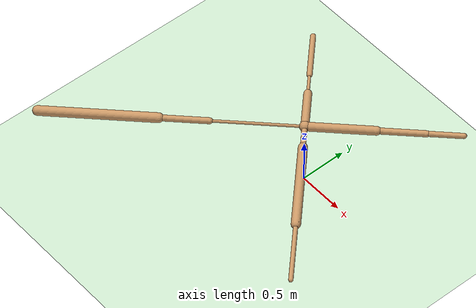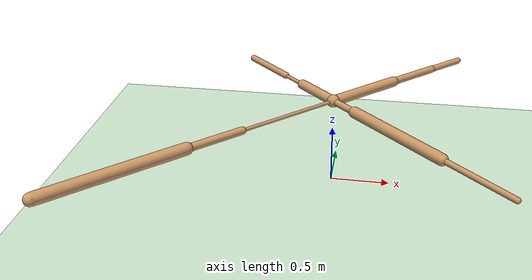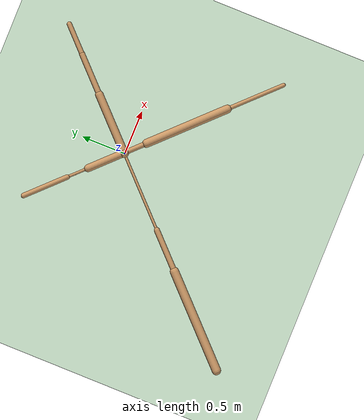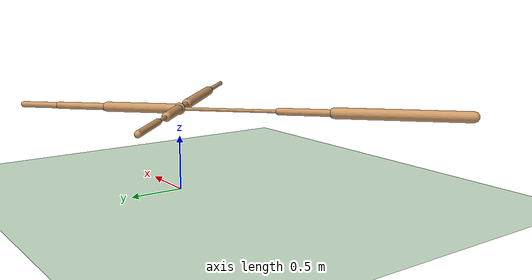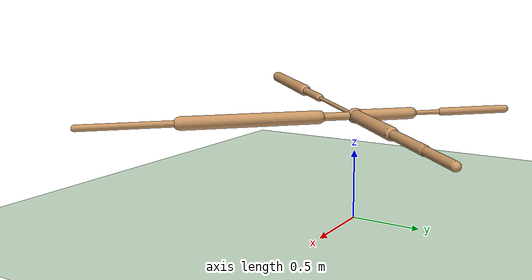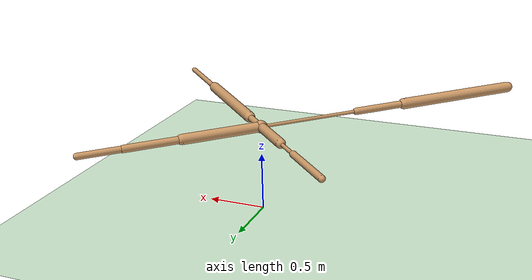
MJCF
<mujoco model="ant">
  <compiler angle="degree" coordinate="local" inertiafromgeom="true" />
  <option integrator="RK4" timestep="0.01" />
  <custom>
    <numeric data="0.0 0.0 0.55 1.0 0.0 0.0 0.0 0.0 1.0 0.0 -1.0 0.0 -1.0 0.0 1.0" name="init_qpos" />
  </custom>
  <default>
    <joint armature="1" damping="1" limited="true" />
    <geom conaffinity="0" condim="3" density="5.0" friction="1 0.5 0.5" margin="0.01" rgba="0.8 0.6 0.4 1" />
  </default>
  <asset>
    <texture builtin="gradient" height="100" rgb1="1 1 1" rgb2="0 0 0" type="skybox" width="100" />
    <texture builtin="flat" height="1278" mark="cross" markrgb="1 1 1" name="texgeom" random="0.01" rgb1="0.8 0.6 0.4" rgb2="0.8 0.6 0.4" type="cube" width="127" />
    <texture builtin="checker" height="100" name="texplane" rgb1="0 0 0" rgb2="0.8 0.8 0.8" type="2d" width="100" />
    <material name="MatPlane" reflectance="0.5" shininess="1" specular="1" texrepeat="60 60" texture="texplane" />
    <material name="geom" texture="texgeom" texuniform="true" />
  </asset>
  <worldbody>
    <light cutoff="100" diffuse="1 1 1" dir="-0 0 -1.3" directional="true" exponent="1" pos="0 0 1.3" specular=".1 .1 .1" />
    <geom conaffinity="1" condim="3" material="MatPlane" name="floor" pos="0 0 0" rgba="0.8 0.9 0.8 1" size="40 40 40" type="plane" />
    <body name="torso" pos="0 0 0.75">
      <camera name="track" mode="trackcom" pos="0 -11 5" xyaxes="1 0 0 0 0.5 1" />
      <geom name="torso_geom" pos="0 0 0" size="0.0537191703915596" type="sphere" />
      <joint armature="0" damping="0" limited="false" margin="0.01" name="root" pos="0 0 0" type="free" />
      <body name="front_left_leg" pos="0 0 0">
        <geom fromto="0 0 0 0.4819886386394501 0.4819886386394501 0" name="aux_1_geom" size="0.04423833638429642" type="capsule" />
        <body name="aux_1" pos="0.4819886386394501 0.4819886386394501 0">
          <joint axis="0 0 1" name="hip_1" pos="0.0 0.0 0.0" range="-30 30" type="hinge" />
          <geom fromto="0 0 0 0.3337860405445099 0.3337860405445099 0" name="left_leg_geom" size="0.03169228881597519" type="capsule" />
          <body name="left_leg_geom_aux" pos="0.3337860405445099 0.3337860405445099 0">
            <joint axis="-1 1 0" name="ankle_1" pos="0.0 0.0 0.0" range="30 70" type="hinge" />
            <geom fromto="0 0 0 0.24882763624191284 0.24882763624191284 0" name="left_ankle_geom" size="0.0273785050958395" type="capsule" />
          </body>
        </body>
      </body>
      <body name="front_right_leg" pos="0 0 0">
        <geom fromto="0 0 0 -0.29755309224128723 0.29755309224128723 0" name="aux_2_geom" size="0.04140832647681236" type="capsule" />
        <body name="aux_2" pos="-0.29755309224128723 0.29755309224128723 0">
          <joint axis="0 0 1" name="hip_2" pos="0.0 0.0 0.0" range="-30 30" type="hinge" />
          <geom fromto="0 0 0 -0.17156273126602173 0.17156273126602173 0" name="right_leg_geom" size="0.015666646882891655" type="capsule" />
          <body name="right_leg_geom_aux" pos="-0.17156273126602173 0.17156273126602173 0">
            <joint axis="1 1 0" name="ankle_2" pos="0.0 0.0 0.0" range="-70 -30" type="hinge" />
            <geom fromto="0 0 0 -0.3616850972175598 0.3616850972175598 0" name="right_ankle_geom" size="0.028036540374159813" type="capsule" />
          </body>
        </body>
      </body>
      <body name="back_leg" pos="0 0 0">
        <geom fromto="0 0 0 -0.6383985877037048 -0.6383985877037048 0" name="aux_3_geom" size="0.01466898899525404" type="capsule" />
        <body name="aux_3" pos="-0.6383985877037048 -0.6383985877037048 0">
          <joint axis="0 0 1" name="hip_3" pos="0.0 0.0 0.0" range="-30 30" type="hinge" />
          <geom fromto="0 0 0 -0.3428608179092407 -0.3428608179092407 0" name="back_leg_geom" size="0.03132690116763115" type="capsule" />
          <body name="back_leg_geom_aux" pos="-0.3428608179092407 -0.3428608179092407 0">
            <joint axis="-1 1 0" name="ankle_3" pos="0.0 0.0 0.0" range="-70 -30" type="hinge" />
            <geom fromto="0 0 0 -0.8184705376625061 -0.8184705376625061 0" name="third_ankle_geom" size="0.04920578747987747" type="capsule" />
          </body>
        </body>
      </body>
      <body name="right_back_leg" pos="0 0 0">
        <geom fromto="0 0 0 0.1868748515844345 -0.1868748515844345 0" name="aux_4_geom" size="0.02789677120745182" type="capsule" />
        <body name="aux_4" pos="0.1868748515844345 -0.1868748515844345 0">
          <joint axis="0 0 1" name="hip_4" pos="0.0 0.0 0.0" range="-30 30" type="hinge" />
          <geom fromto="0 0 0 0.6671394109725952 -0.6671394109725952 0" name="rightback_leg_geom" size="0.04669053107500076" type="capsule" />
          <body name="rightback_leg_geom_aux" pos="0.6671394109725952 -0.6671394109725952 0">
            <joint axis="1 1 0" name="ankle_4" pos="0.0 0.0 0.0" range="30 70" type="hinge" />
            <geom fromto="0 0 0 0.4644867181777954 -0.4644867181777954 0" name="fourth_ankle_geom" size="0.022664640098810196" type="capsule" />
          </body>
        </body>
      </body>
    </body>
  </worldbody>
  <actuator>
    <motor ctrllimited="true" ctrlrange="-1.0 1.0" joint="hip_4" gear="150" />
    <motor ctrllimited="true" ctrlrange="-1.0 1.0" joint="ankle_4" gear="150" />
    <motor ctrllimited="true" ctrlrange="-1.0 1.0" joint="hip_1" gear="150" />
    <motor ctrllimited="true" ctrlrange="-1.0 1.0" joint="ankle_1" gear="150" />
    <motor ctrllimited="true" ctrlrange="-1.0 1.0" joint="hip_2" gear="150" />
    <motor ctrllimited="true" ctrlrange="-1.0 1.0" joint="ankle_2" gear="150" />
    <motor ctrllimited="true" ctrlrange="-1.0 1.0" joint="hip_3" gear="150" />
    <motor ctrllimited="true" ctrlrange="-1.0 1.0" joint="ankle_3" gear="150" />
  </actuator>
</mujoco>
